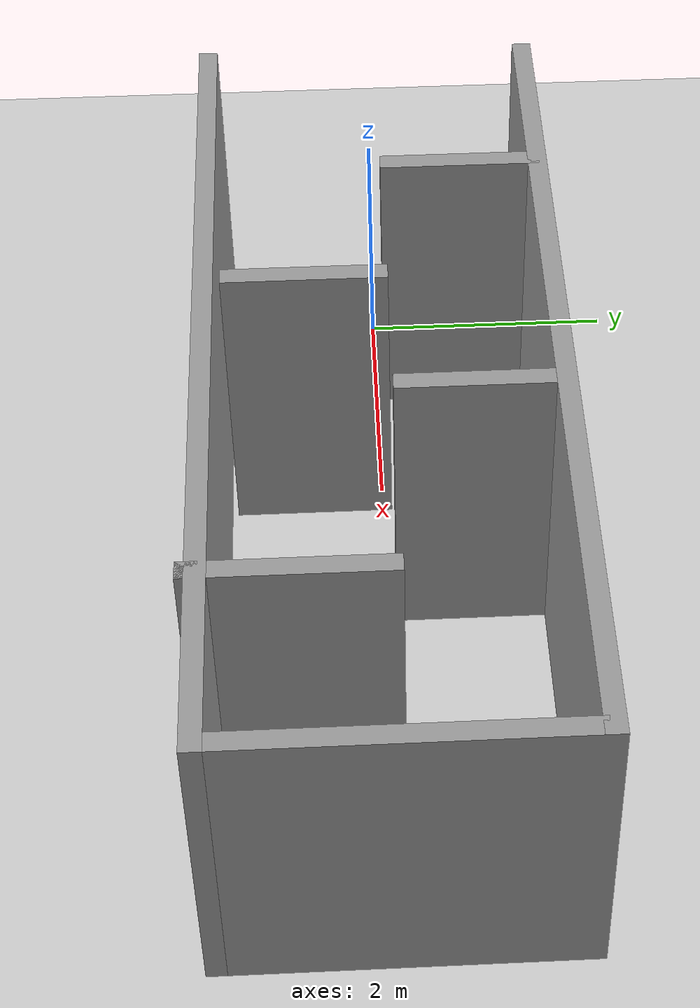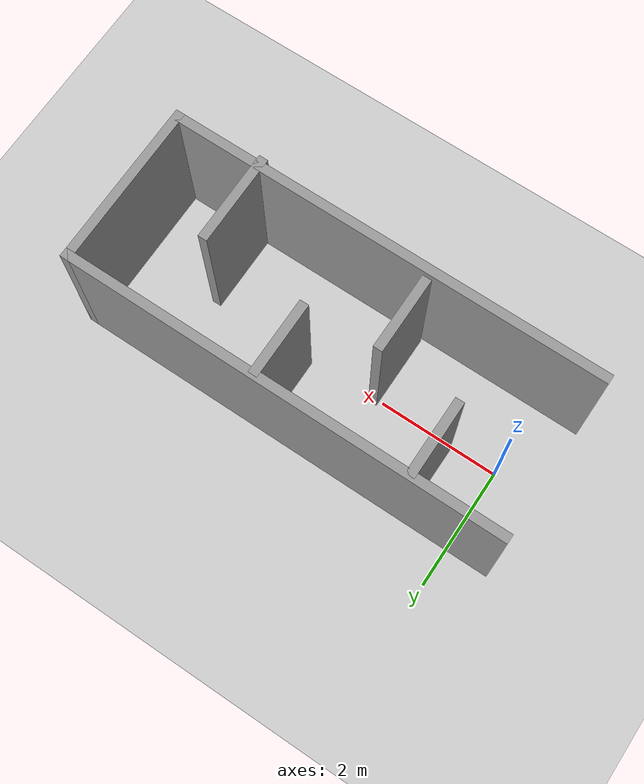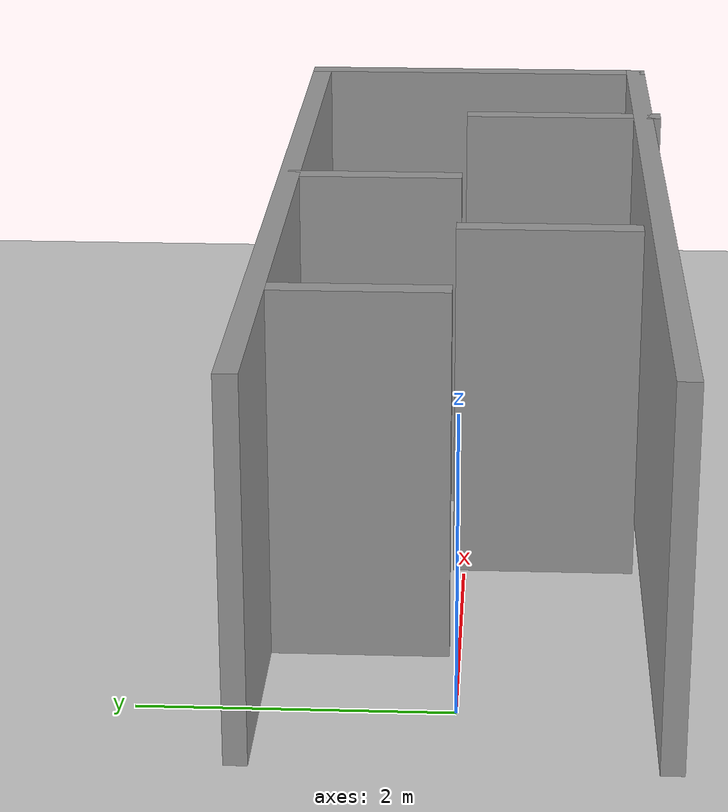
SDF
<sdf version="1.4">
  <world name="default">

    <scene>
      <ambient>0.4 0.4 0.4 1</ambient>
      <background>0.7 0.7 0.7 1</background>
      <shadows>true</shadows>
    </scene>

    <!-- A global light source -->
    <include>
      <uri>model://sun</uri>
    </include>

    <!-- A ground plane -->
    <include>
      <uri>model://ground_plane</uri>
    </include>

    <physics type="ode">
      <real_time_update_rate>1000.0</real_time_update_rate>
      <max_step_size>0.001</max_step_size>
      <real_time_factor>1</real_time_factor>
      <ode>
        <solver>
          <type>quick</type>
          <iters>150</iters>
          <precon_iters>0</precon_iters>
          <sor>1.400000</sor>
          <use_dynamic_moi_rescaling>1</use_dynamic_moi_rescaling>
        </solver>
        <constraints>
          <cfm>0.00001</cfm>
          <erp>0.2</erp>
          <contact_max_correcting_vel>2000.000000</contact_max_correcting_vel>
          <contact_surface_layer>0.01000</contact_surface_layer>
        </constraints>
      </ode>
    </physics>
  <model name='gap2'>
    <pose>2.92 -0.03 0 0 -0 0</pose>
    <link name='Wall_10'>
      <collision name='Wall_10_Collision'>
        <geometry>
          <box>
            <size>7.25 0.15 2.5</size>
          </box>
        </geometry>
        <pose>0 0 1.25 0 -0 0</pose>
      </collision>
      <visual name='Wall_10_Visual'>
        <pose>0 0 1.25 0 -0 0</pose>
        <geometry>
          <box>
            <size>7.25 0.15 2.5</size>
          </box>
        </geometry>
        <material>
          <script>
            <uri>file://media/materials/scripts/gazebo.material</uri>
            <name>Gazebo/Grey</name>
          </script>
          <ambient>1 1 1 1</ambient>
        </material>
        <meta>
          <layer>0</layer>
        </meta>
      </visual>
      <pose>0 -1.27 0 0 -0 3.14159</pose>
    </link>
    <link name='Wall_12'>
      <collision name='Wall_12_Collision'>
        <geometry>
          <box>
            <size>1.25 0.15 2.5</size>
          </box>
        </geometry>
        <pose>0 0 1.25 0 -0 0</pose>
      </collision>
      <visual name='Wall_12_Visual'>
        <pose>0 0 1.25 0 -0 0</pose>
        <geometry>
          <box>
            <size>1.25 0.15 2.5</size>
          </box>
        </geometry>
        <material>
          <script>
            <uri>file://media/materials/scripts/gazebo.material</uri>
            <name>Gazebo/Grey</name>
          </script>
          <ambient>1 1 1 1</ambient>
        </material>
        <meta>
          <layer>0</layer>
        </meta>
      </visual>
      <pose>-2.09 0.72 0 0 -0 -1.5708</pose>
    </link>
    <link name='Wall_14'>
      <collision name='Wall_14_Collision'>
        <geometry>
          <box>
            <size>1.25 0.15 2.5</size>
          </box>
        </geometry>
        <pose>0 0 1.25 0 -0 0</pose>
      </collision>
      <visual name='Wall_14_Visual'>
        <pose>0 0 1.25 0 -0 0</pose>
        <geometry>
          <box>
            <size>1.25 0.15 2.5</size>
          </box>
        </geometry>
        <material>
          <script>
            <uri>file://media/materials/scripts/gazebo.material</uri>
            <name>Gazebo/Grey</name>
          </script>
          <ambient>1 1 1 1</ambient>
        </material>
        <meta>
          <layer>0</layer>
        </meta>
      </visual>
      <pose>-0.78 -0.52 0 0 -0 -1.5708</pose>
    </link>
    <link name='Wall_16'>
      <collision name='Wall_16_Collision'>
        <geometry>
          <box>
            <size>1.25 0.15 2.5</size>
          </box>
        </geometry>
        <pose>0 0 1.25 0 -0 0</pose>
      </collision>
      <visual name='Wall_16_Visual'>
        <pose>0 0 1.25 0 -0 0</pose>
        <geometry>
          <box>
            <size>1.25 0.15 2.5</size>
          </box>
        </geometry>
        <material>
          <script>
            <uri>file://media/materials/scripts/gazebo.material</uri>
            <name>Gazebo/Grey</name>
          </script>
          <ambient>1 1 1 1</ambient>
        </material>
        <meta>
          <layer>0</layer>
        </meta>
      </visual>
      <pose>0.42 0.72 0 0 -0 -1.5708</pose>
    </link>
    <link name='Wall_21'>
      <collision name='Wall_21_Collision'>
        <geometry>
          <box>
            <size>0.15 0.15 2.5</size>
          </box>
        </geometry>
        <pose>0 0 1.25 0 -0 0</pose>
      </collision>
      <visual name='Wall_21_Visual'>
        <pose>0 0 1.25 0 -0 0</pose>
        <geometry>
          <box>
            <size>0.15 0.15 2.5</size>
          </box>
        </geometry>
        <material>
          <script>
            <uri>file://media/materials/scripts/gazebo.material</uri>
            <name>Gazebo/Grey</name>
          </script>
          <ambient>1 1 1 1</ambient>
        </material>
        <meta>
          <layer>0</layer>
        </meta>
      </visual>
      <pose>2.14 -1.33 0 0 -0 0</pose>
    </link>
    <link name='Wall_26'>
      <collision name='Wall_26_Collision'>
        <geometry>
          <box>
            <size>1.5 0.15 2.5</size>
          </box>
        </geometry>
        <pose>0 0 1.25 0 -0 0</pose>
      </collision>
      <visual name='Wall_26_Visual'>
        <pose>0 0 1.25 0 -0 0</pose>
        <geometry>
          <box>
            <size>1.5 0.15 2.5</size>
          </box>
        </geometry>
        <material>
          <script>
            <uri>file://media/materials/scripts/gazebo.material</uri>
            <name>Gazebo/Grey</name>
          </script>
          <ambient>1 1 1 1</ambient>
        </material>
        <meta>
          <layer>0</layer>
        </meta>
      </visual>
      <pose>2.14 -0.655 0 0 -0 1.5708</pose>
    </link>
    <link name='Wall_7'>
      <collision name='Wall_7_Collision'>
        <geometry>
          <box>
            <size>7.25 0.15 2.5</size>
          </box>
        </geometry>
        <pose>0 0 1.25 0 -0 0</pose>
      </collision>
      <visual name='Wall_7_Visual'>
        <pose>0 0 1.25 0 -0 0</pose>
        <geometry>
          <box>
            <size>7.25 0.15 2.5</size>
          </box>
        </geometry>
        <material>
          <script>
            <uri>file://media/materials/scripts/gazebo.material</uri>
            <name>Gazebo/Grey</name>
          </script>
          <ambient>1 1 1 1</ambient>
        </material>
        <meta>
          <layer>0</layer>
        </meta>
      </visual>
      <pose>0 1.33 0 0 -0 0</pose>
    </link>
    <link name='Wall_9'>
      <collision name='Wall_9_Collision'>
        <geometry>
          <box>
            <size>2.75 0.15 2.5</size>
          </box>
        </geometry>
        <pose>0 0 1.25 0 -0 0</pose>
      </collision>
      <visual name='Wall_9_Visual'>
        <pose>0 0 1.25 0 -0 0</pose>
        <geometry>
          <box>
            <size>2.75 0.15 2.5</size>
          </box>
        </geometry>
        <material>
          <script>
            <uri>file://media/materials/scripts/gazebo.material</uri>
            <name>Gazebo/Grey</name>
          </script>
          <ambient>1 1 1 1</ambient>
        </material>
        <meta>
          <layer>0</layer>
        </meta>
      </visual>
      <pose>3.55 0.03 0 0 -0 -1.5708</pose>
    </link>
    <static>1</static>
  </model>

  </world>
</sdf>
